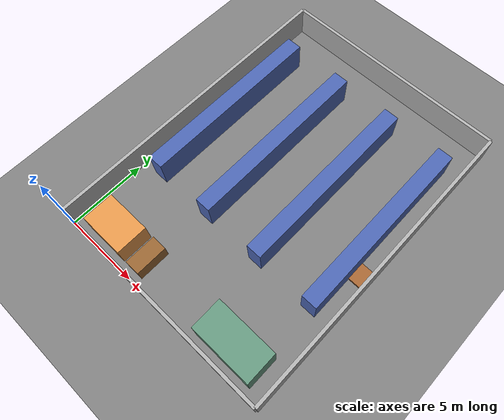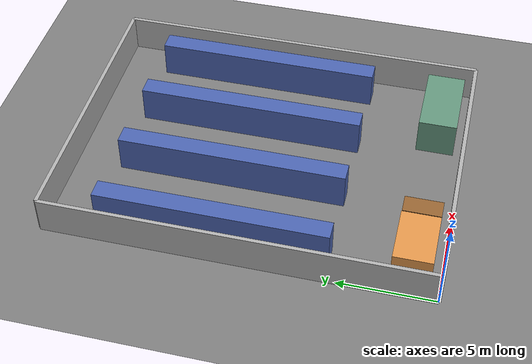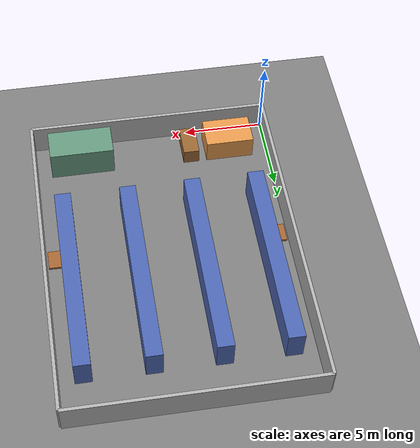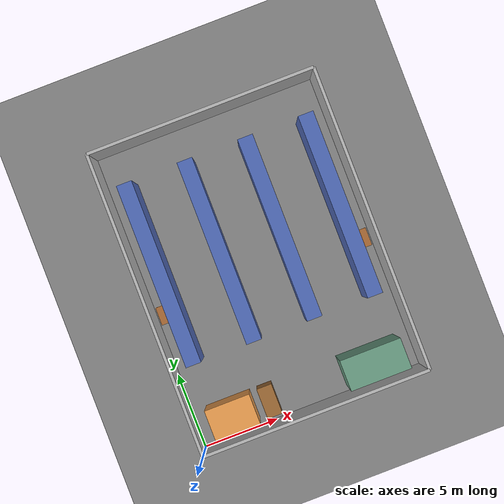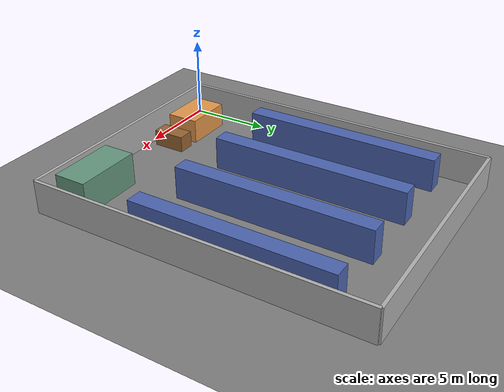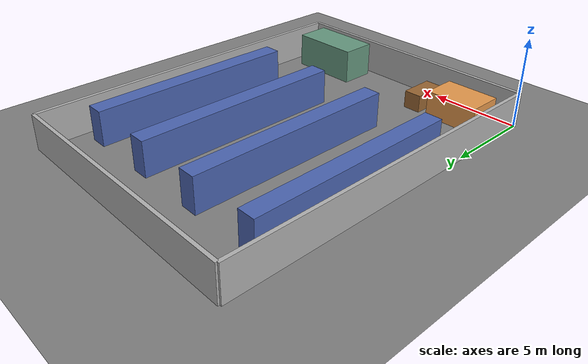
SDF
<?xml version="1.0"?>
<sdf version="1.6">
  <world name="warehouse">

    <light type="directional" name="sun">
      <cast_shadows>true</cast_shadows>
      <pose>0 0 10 0 0 0</pose>
      <diffuse>0.8 0.8 0.8 1</diffuse>
      <specular>0.2 0.2 0.2 1</specular>
      <direction>-0.5 0.1 -0.9</direction>
    </light>

    <model name="ground_plane">
      <static>true</static>
      <link name="link">
        <collision name="c"><geometry><plane><normal>0 0 1</normal><size>100 100</size></plane></geometry></collision>
        <visual name="v"><geometry><plane><normal>0 0 1</normal><size>100 100</size></plane></geometry>
          <material><ambient>0.3 0.3 0.3 1</ambient><diffuse>0.5 0.5 0.5 1</diffuse></material></visual>
      </link>
    </model>

    <!-- OUTER WALLS -->
    <model name="back_wall"><static>true</static><pose>7.5 20 1 0 0 0</pose>
      <link name="link">
        <collision name="c"><geometry><box><size>15 0.2 2</size></box></geometry></collision>
        <visual name="v"><geometry><box><size>15 0.2 2</size></box></geometry>
          <material><ambient>0.6 0.6 0.6 1</ambient><diffuse>0.7 0.7 0.7 1</diffuse></material></visual>
      </link></model>
    <model name="front_wall"><static>true</static><pose>7.5 0 1 0 0 0</pose>
      <link name="link">
        <collision name="c"><geometry><box><size>15 0.2 2</size></box></geometry></collision>
        <visual name="v"><geometry><box><size>15 0.2 2</size></box></geometry>
          <material><ambient>0.6 0.6 0.6 1</ambient><diffuse>0.7 0.7 0.7 1</diffuse></material></visual>
      </link></model>
    <model name="left_wall"><static>true</static><pose>0 10 1 0 0 0</pose>
      <link name="link">
        <collision name="c"><geometry><box><size>0.2 20 2</size></box></geometry></collision>
        <visual name="v"><geometry><box><size>0.2 20 2</size></box></geometry>
          <material><ambient>0.6 0.6 0.6 1</ambient><diffuse>0.7 0.7 0.7 1</diffuse></material></visual>
      </link></model>
    <model name="right_wall"><static>true</static><pose>15 10 1 0 0 0</pose>
      <link name="link">
        <collision name="c"><geometry><box><size>0.2 20 2</size></box></geometry></collision>
        <visual name="v"><geometry><box><size>0.2 20 2</size></box></geometry>
          <material><ambient>0.6 0.6 0.6 1</ambient><diffuse>0.7 0.7 0.7 1</diffuse></material></visual>
      </link></model>

    <!-- GROUND ZONES (now Y=0.5 to 2.5 - shorter so corridor is wider) -->
    <model name="packing_area"><static>true</static><pose>2.5 1.5 0.75 0 0 0</pose>
      <link name="link">
        <collision name="c"><geometry><box><size>3 2 1.5</size></box></geometry></collision>
        <visual name="v"><geometry><box><size>3 2 1.5</size></box></geometry>
          <material><ambient>0.8 0.5 0.2 1</ambient><diffuse>0.9 0.6 0.3 1</diffuse></material></visual>
      </link></model>
    <model name="pallet_area"><static>true</static><pose>5 1.5 0.5 0 0 0</pose>
      <link name="link">
        <collision name="c"><geometry><box><size>1 2 1</size></box></geometry></collision>
        <visual name="v"><geometry><box><size>1 2 1</size></box></geometry>
          <material><ambient>0.5 0.3 0.2 1</ambient><diffuse>0.6 0.4 0.2 1</diffuse></material></visual>
      </link></model>
    <model name="office"><static>true</static><pose>12 1.5 1 0 0 0</pose>
      <link name="link">
        <collision name="c"><geometry><box><size>4 2 2</size></box></geometry></collision>
        <visual name="v"><geometry><box><size>4 2 2</size></box></geometry>
          <material><ambient>0.3 0.5 0.4 1</ambient><diffuse>0.4 0.6 0.5 1</diffuse></material></visual>
      </link></model>

    <!-- 4 STORAGE RACKS (Y=5.5 to 17.5, 12m tall) -->
    <model name="rack_1"><static>true</static><pose>1.5 11.5 1 0 0 0</pose>
      <link name="link">
        <collision name="c"><geometry><box><size>1 12 2</size></box></geometry></collision>
        <visual name="v"><geometry><box><size>1 12 2</size></box></geometry>
          <material><ambient>0.2 0.3 0.6 1</ambient><diffuse>0.3 0.4 0.7 1</diffuse></material></visual>
      </link></model>
    <model name="rack_2"><static>true</static><pose>5.5 11.5 1 0 0 0</pose>
      <link name="link">
        <collision name="c"><geometry><box><size>1 12 2</size></box></geometry></collision>
        <visual name="v"><geometry><box><size>1 12 2</size></box></geometry>
          <material><ambient>0.2 0.3 0.6 1</ambient><diffuse>0.3 0.4 0.7 1</diffuse></material></visual>
      </link></model>
    <model name="rack_3"><static>true</static><pose>9.5 11.5 1 0 0 0</pose>
      <link name="link">
        <collision name="c"><geometry><box><size>1 12 2</size></box></geometry></collision>
        <visual name="v"><geometry><box><size>1 12 2</size></box></geometry>
          <material><ambient>0.2 0.3 0.6 1</ambient><diffuse>0.3 0.4 0.7 1</diffuse></material></visual>
      </link></model>
    <model name="rack_4"><static>true</static><pose>13.5 11.5 1 0 0 0</pose>
      <link name="link">
        <collision name="c"><geometry><box><size>1 12 2</size></box></geometry></collision>
        <visual name="v"><geometry><box><size>1 12 2</size></box></geometry>
          <material><ambient>0.2 0.3 0.6 1</ambient><diffuse>0.3 0.4 0.7 1</diffuse></material></visual>
      </link></model>

    <!-- PALLETS IN SIDE PASSES -->
    <model name="pallet_1"><static>true</static><pose>0.6 9 0.075 0 0 0</pose>
      <link name="link">
        <collision name="c"><geometry><box><size>0.8 1.2 0.15</size></box></geometry></collision>
        <visual name="v"><geometry><box><size>0.8 1.2 0.15</size></box></geometry>
          <material><ambient>0.55 0.35 0.15 1</ambient><diffuse>0.65 0.4 0.2 1</diffuse></material></visual>
      </link></model>
    <model name="pallet_2"><static>true</static><pose>14.4 9 0.075 0 0 0</pose>
      <link name="link">
        <collision name="c"><geometry><box><size>0.8 1.2 0.15</size></box></geometry></collision>
        <visual name="v"><geometry><box><size>0.8 1.2 0.15</size></box></geometry>
          <material><ambient>0.55 0.35 0.15 1</ambient><diffuse>0.65 0.4 0.2 1</diffuse></material></visual>
      </link></model>

  </world>
</sdf>
